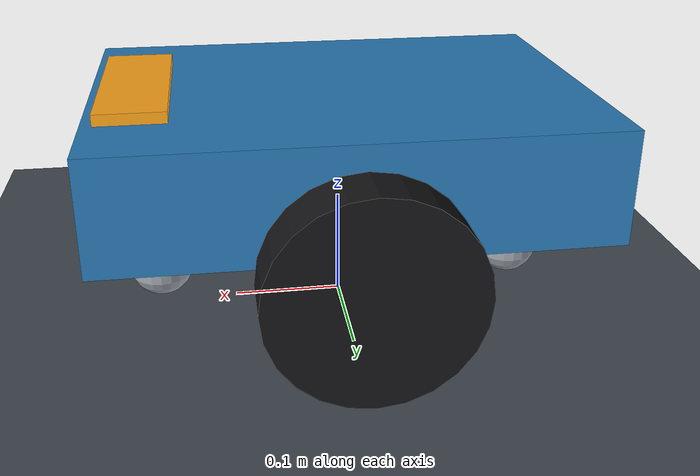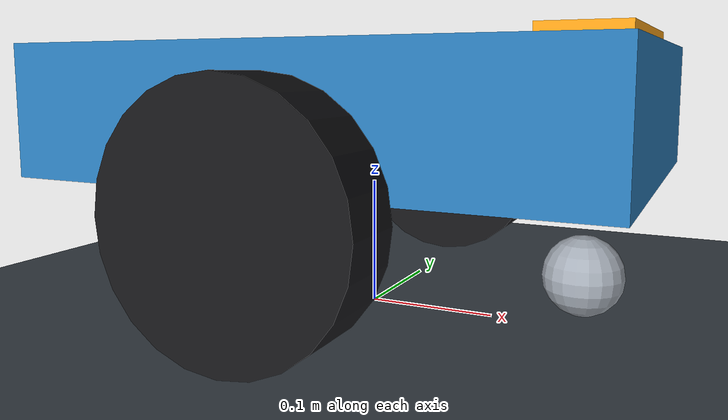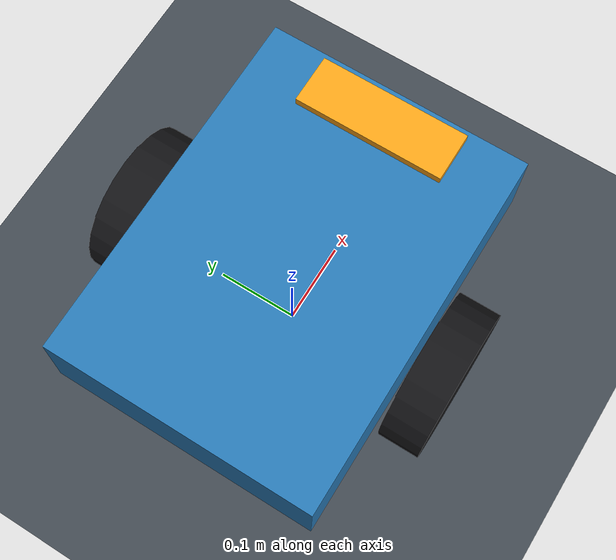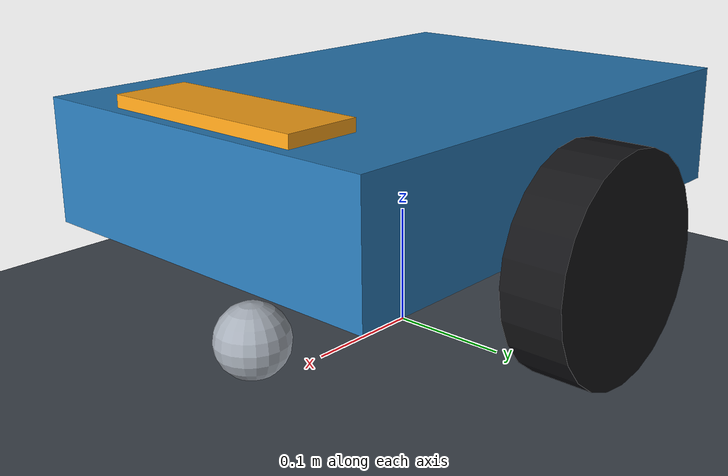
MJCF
<mujoco model="mobile_fetch_base">
  <!-- Coordinates: +X forward, +Y left, +Z up. All dimensions are metres. -->
  <compiler angle="degree"/>
  <option timestep="0.002" gravity="0 0 -9.81" integrator="implicitfast"/>
  <visual>
    <global azimuth="135" elevation="-25"/>
  </visual>
  <asset>
    <texture name="floor_grid" type="2d" builtin="checker"
             rgb1="0.22 0.25 0.28" rgb2="0.30 0.33 0.36" width="512" height="512"/>
    <material name="floor_material" texture="floor_grid" texrepeat="6 6" texuniform="true"/>
  </asset>
  <default>
    <geom friction="0.8 0.005 0.0001" solref="0.01 1"/>
    <joint damping="0.02"/>
  </default>
  <worldbody>
    <light pos="0 -2 4" dir="0 0 -1" diffuse="0.8 0.8 0.8"/>
    <geom name="floor" type="plane" size="3 3 0.1" material="floor_material"/>
    <body name="base" pos="0 0 0.16">
      <freejoint name="base_free"/>
      <geom name="chassis" type="box" size="0.22 0.16 0.05"
            mass="5" rgba="0.16 0.48 0.72 1"/>
      <!-- A non-colliding nose marks the forward direction. -->
      <geom name="front_marker" type="box" pos="0.18 0 0.055"
            size="0.03 0.09 0.005" mass="0" contype="0" conaffinity="0"
            rgba="1 0.65 0.1 1"/>
      <body name="left_wheel" pos="0 0.19 -0.06">
        <joint name="left_wheel_joint" type="hinge" axis="0 1 0"/>
        <geom name="left_tire" type="cylinder" size="0.09 0.025"
              euler="90 0 0" mass="0.3" rgba="0.08 0.08 0.09 1"/>
      </body>
      <body name="right_wheel" pos="0 -0.19 -0.06">
        <joint name="right_wheel_joint" type="hinge" axis="0 1 0"/>
        <geom name="right_tire" type="cylinder" size="0.09 0.025"
              euler="90 0 0" mass="0.3" rgba="0.08 0.08 0.09 1"/>
      </body>
      <geom name="front_support" type="sphere" pos="0.17 0 -0.12"
            size="0.03" mass="0.1" priority="1" friction="0.001 0.0001 0.0001"
            rgba="0.65 0.68 0.72 1"/>
      <geom name="rear_support" type="sphere" pos="-0.17 0 -0.12"
            size="0.03" mass="0.1" priority="1" friction="0.001 0.0001 0.0001"
            rgba="0.65 0.68 0.72 1"/>
    </body>
  </worldbody>

  <actuator>
    <velocity name="left_wheel_motor"
              joint="left_wheel_joint"
              gear="1"
              kv="1"
              ctrllimited="true"
              ctrlrange="-10 10"
              forcelimited="true"
              forcerange="-2 2"/>

    <velocity name="right_wheel_motor"
              joint="right_wheel_joint"
              gear="1"
              kv="1"
              ctrllimited="true"
              ctrlrange="-10 10"
              forcelimited="true"
              forcerange="-2 2"/>
  </actuator>
</mujoco>
